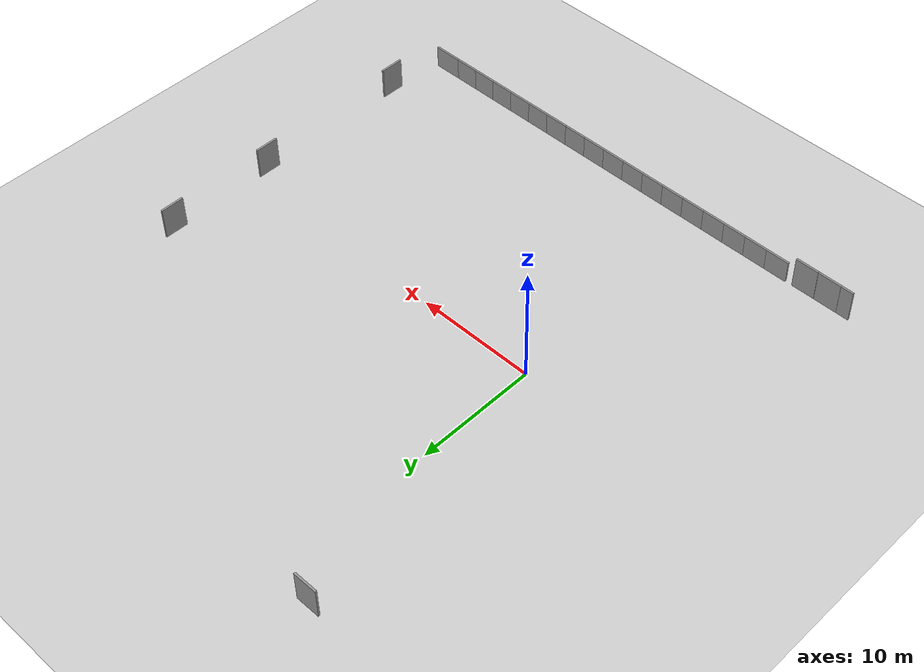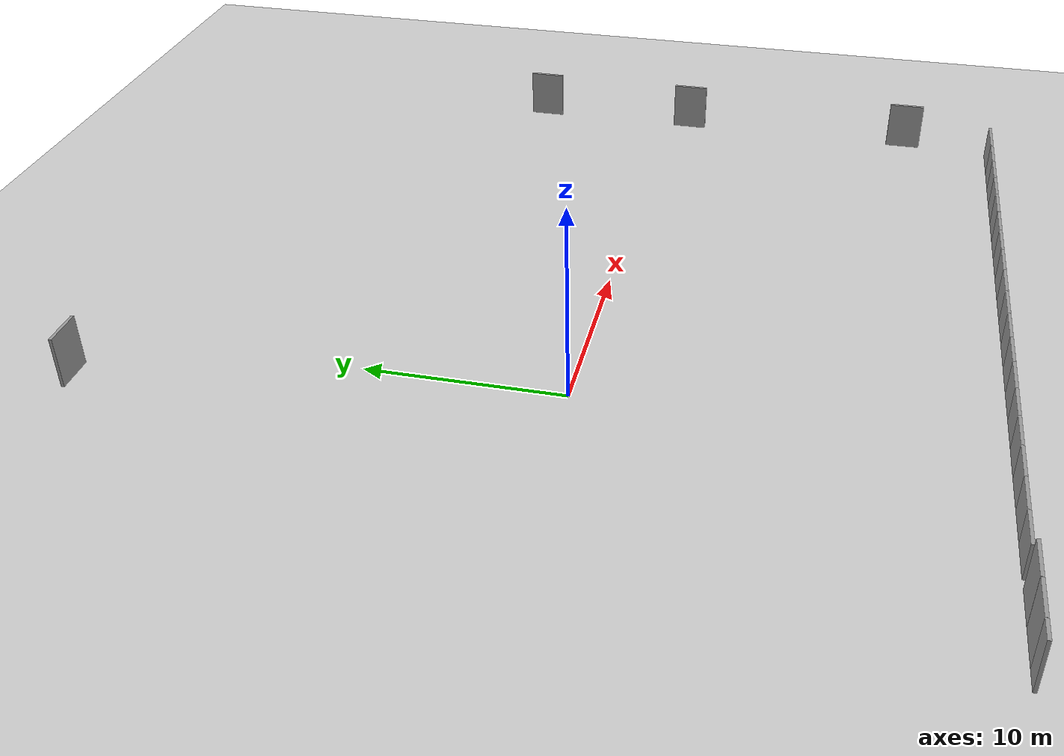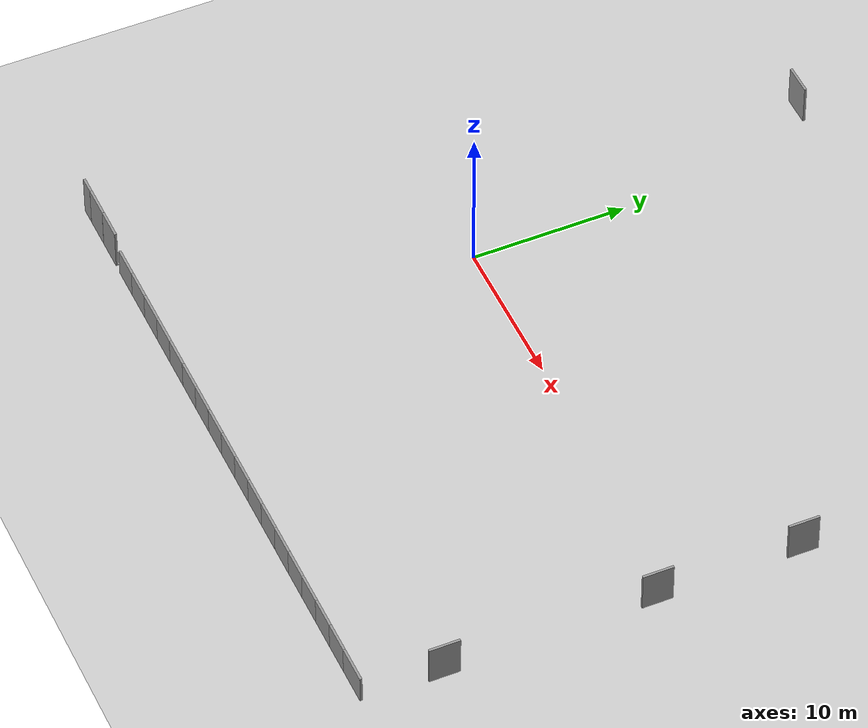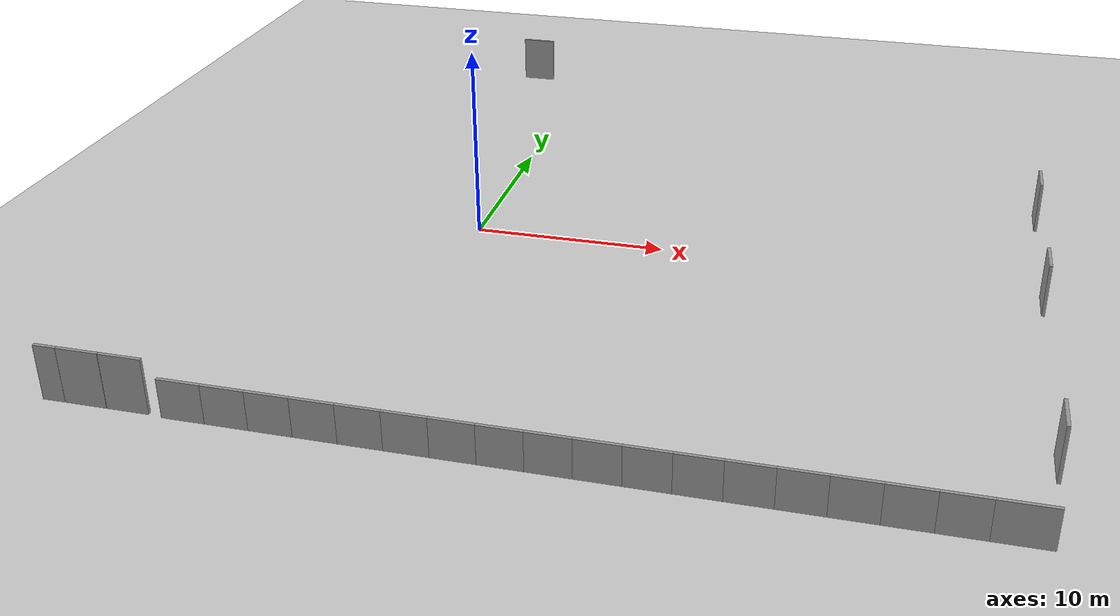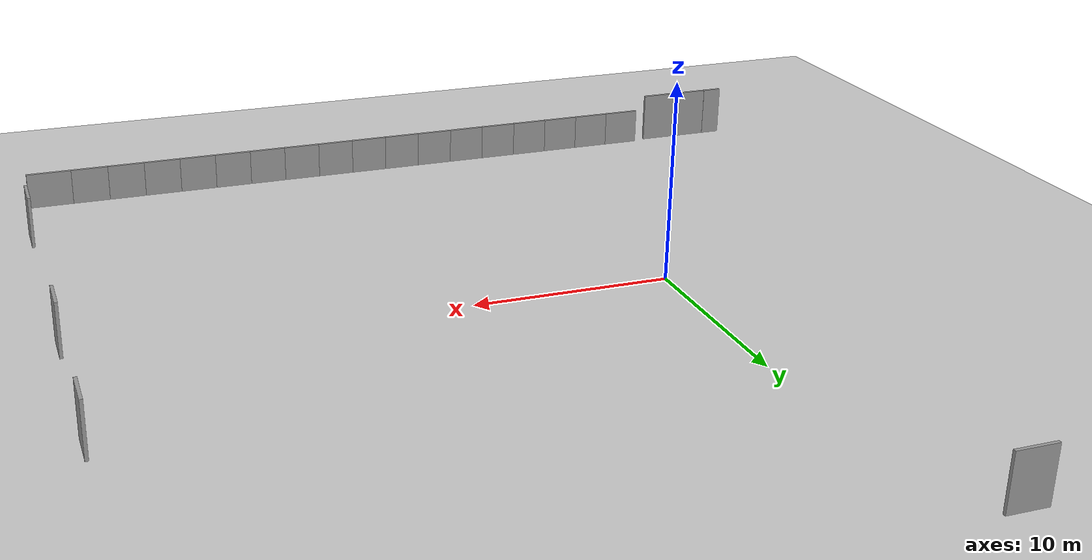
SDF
<sdf version="1.4">
 <world name="GrannyAnnie">
  <light name="sun" type="directional">
   <pose>0 0 10 0 -0 0</pose>
   <diffuse>0.8 0.8 0.8 1</diffuse>
   <specular>0.2 0.2 0.2 1</specular>
   <attenuation>
    <range>1000</range>
    <constant>0.9</constant>
    <linear>0.01</linear>
    <quadratic>0.001</quadratic>
   </attenuation>
   <direction>-0.5 0.1 -0.9</direction>
  </light>
  <model name="ground_plane">
   <static>1</static>
   <link name="link">
    <collision name="collision">
     <geometry><plane><normal>0 0 1</normal><size>100 100</size></plane></geometry>
     <surface><friction><ode><mu>100</mu><mu2>50</mu2></ode></friction></surface>
    </collision>
    <visual name="visual">
     <cast_shadows>0</cast_shadows>
     <geometry><plane><normal>0 0 1</normal><size>100 100</size></plane></geometry>
     <material>
      <script><uri>file://media/materials/scripts/gazebo.material</uri><name>Gazebo/Grey</name></script>
     </material>
    </visual>
    <velocity_decay><linear>0</linear><angular>0</angular></velocity_decay>
   </link>
  </model>
  <physics type="ode">
   <max_step_size>0.01</max_step_size>
   <real_time_factor>1</real_time_factor>
   <real_time_update_rate>100</real_time_update_rate>
   <gravity>0 0 -9.8</gravity>
  </physics>
  <scene><ambient>0.4 0.4 0.4 1</ambient><background>0.7 0.7 0.7 1</background><shadows>1</shadows></scene>
  <model name="unit_box_00">
   <pose>-12.7 -19.95 1.36159 0 -0 0</pose>
   <link name="link">
    <inertial>
     <mass>1</mass>
     <inertia>
      <ixx>0.166667</ixx>
      <ixy>0</ixy>
      <ixz>0</ixz>
      <iyy>0.166667</iyy>
      <iyz>0</iyz>
      <izz>0.166667</izz>
     </inertia>
    </inertial>
    <collision name="collision"><geometry><box><size>1.07 0.158807 2.72316</size></box></geometry></collision>
    <visual name="visual">
     <geometry><box><size>1.07 0.158807 2.72316</size></box></geometry>
     <material>
      <script><name>Gazebo/Grey</name><uri>file://media/materials/scripts/gazebo.material</uri></script>
     </material>
    </visual>
   </link>
  </model>
  <model name="unit_box_0">
   <pose>-11.17 -19.95 1.36159 0 -0 0</pose>
   <link name="link">
    <inertial>
     <mass>1</mass>
     <inertia>
      <ixx>0.166667</ixx>
      <ixy>0</ixy>
      <ixz>0</ixz>
      <iyy>0.166667</iyy>
      <iyz>0</iyz>
      <izz>0.166667</izz>
     </inertia>
    </inertial>
    <collision name="collision"><geometry><box><size>1.98304 0.158807 2.72316</size></box></geometry></collision>
    <visual name="visual">
     <geometry><box><size>1.98304 0.158807 2.72316</size></box></geometry>
     <material>
      <script><name>Gazebo/Grey</name><uri>file://media/materials/scripts/gazebo.material</uri></script>
     </material>
    </visual>
   </link>
  </model>
  <model name="unit_box_1">
   <pose>-9.17 -19.95 1.36159 0 -0 0</pose>
   <link name="link">
    <inertial>
     <mass>1</mass>
     <inertia>
      <ixx>0.166667</ixx>
      <ixy>0</ixy>
      <ixz>0</ixz>
      <iyy>0.166667</iyy>
      <iyz>0</iyz>
      <izz>0.166667</izz>
     </inertia>
    </inertial>
    <collision name="collision"><geometry><box><size>1.98304 0.158807 2.72316</size></box></geometry></collision>
    <visual name="visual">
     <geometry><box><size>1.98304 0.158807 2.72316</size></box></geometry>
     <material>
      <script><name>Gazebo/Grey</name><uri>file://media/materials/scripts/gazebo.material</uri></script>
     </material>
    </visual>
   </link>
  </model>
  <model name="unit_box_2">
   <pose>-3.24789 23.3312 1.36159 -4.1e-05 9.6e-05 0.004959</pose>
   <link name="link">
    <inertial>
     <mass>1</mass>
     <inertia>
      <ixx>0.166667</ixx>
      <ixy>0</ixy>
      <ixz>0</ixz>
      <iyy>0.166667</iyy>
      <iyz>0</iyz>
      <izz>0.166667</izz>
     </inertia>
    </inertial>
    <collision name="collision"><geometry><box><size>1.98304 0.158807 2.72316</size></box></geometry></collision>
    <visual name="visual">
     <geometry><box><size>1.98304 0.158807 2.72316</size></box></geometry>
     <material>
      <script><name>Gazebo/Grey</name><uri>file://media/materials/scripts/gazebo.material</uri></script>
     </material>
    </visual>
   </link>
  </model>
  <model name="unit_box_3">
   <pose>29.08 7.85 1.36159 6.5e-05 9.9e-05 1.57</pose>
   <link name="link">
    <inertial>
     <mass>1</mass>
     <inertia>
      <ixx>0.166667</ixx>
      <ixy>0</ixy>
      <ixz>0</ixz>
      <iyy>0.166667</iyy>
      <iyz>0</iyz>
      <izz>0.166667</izz>
     </inertia>
    </inertial>
    <collision name="collision"><geometry><box><size>1.98304 0.158807 2.72316</size></box></geometry></collision>
    <visual name="visual">
     <geometry><box><size>1.98304 0.158807 2.72316</size></box></geometry>
     <material>
      <script><name>Gazebo/Grey</name><uri>file://media/materials/scripts/gazebo.material</uri></script>
     </material>
    </visual>
   </link>
  </model>
  <model name="unit_box_4">
   <pose>29.08 -1.47638 1.36159 6.5e-05 9.9e-05 1.57</pose>
   <link name="link">
    <inertial>
     <mass>1</mass>
     <inertia>
      <ixx>0.166667</ixx>
      <ixy>0</ixy>
      <ixz>0</ixz>
      <iyy>0.166667</iyy>
      <iyz>0</iyz>
      <izz>0.166667</izz>
     </inertia>
    </inertial>
    <collision name="collision"><geometry><box><size>1.98304 0.158807 2.72316</size></box></geometry></collision>
    <visual name="visual">
     <geometry><box><size>1.98304 0.158807 2.72316</size></box></geometry>
     <material>
      <script><name>Gazebo/Grey</name><uri>file://media/materials/scripts/gazebo.material</uri></script>
     </material>
    </visual>
   </link>
  </model>
  <model name="unit_box_5">
   <pose>29.08 -14.8896 1.36159 6.5e-05 9.9e-05 1.57</pose>
   <link name="link">
    <inertial>
     <mass>1</mass>
     <inertia>
      <ixx>0.166667</ixx>
      <ixy>0</ixy>
      <ixz>0</ixz>
      <iyy>0.166667</iyy>
      <iyz>0</iyz>
      <izz>0.166667</izz>
     </inertia>
    </inertial>
    <collision name="collision"><geometry><box><size>1.98304 0.158807 2.72316</size></box></geometry></collision>
    <visual name="visual">
     <geometry><box><size>1.98304 0.158807 2.72316</size></box></geometry>
     <material>
      <script><name>Gazebo/Grey</name><uri>file://media/materials/scripts/gazebo.material</uri></script>
     </material>
    </visual>
   </link>
  </model>
  <model name="unit_box_6">
   <pose>-6.6 -19.95 0.5 0 -0 0</pose>
   <link name="link">
    <inertial>
     <mass>1</mass>
     <inertia>
      <ixx>0.166667</ixx>
      <ixy>0</ixy>
      <ixz>0</ixz>
      <iyy>0.166667</iyy>
      <iyz>0</iyz>
      <izz>0.166667</izz>
     </inertia>
    </inertial>
    <collision name="collision"><geometry><box><size>2 0.158807 2.72316</size></box></geometry></collision>
    <visual name="visual">
     <geometry><box><size>2 0.158807 2.72316</size></box></geometry>
     <material>
      <script><name>Gazebo/Grey</name><uri>file://media/materials/scripts/gazebo.material</uri></script>
     </material>
    </visual>
   </link>
  </model>
  <model name="unit_box_7">
   <pose>-4.6 -19.95 0.5 0 -0 0</pose>
   <link name="link">
    <inertial>
     <mass>1</mass>
     <inertia>
      <ixx>0.166667</ixx>
      <ixy>0</ixy>
      <ixz>0</ixz>
      <iyy>0.166667</iyy>
      <iyz>0</iyz>
      <izz>0.166667</izz>
     </inertia>
    </inertial>
    <collision name="collision"><geometry><box><size>2 0.158807 2.72316</size></box></geometry></collision>
    <visual name="visual">
     <geometry><box><size>2 0.158807 2.72316</size></box></geometry>
     <material>
      <script><name>Gazebo/Grey</name><uri>file://media/materials/scripts/gazebo.material</uri></script>
     </material>
    </visual>
   </link>
  </model>
  <model name="unit_box_8">
   <pose>-2.6 -19.95 0.5 0 -0 0</pose>
   <link name="link">
    <inertial>
     <mass>1</mass>
     <inertia>
      <ixx>0.166667</ixx>
      <ixy>0</ixy>
      <ixz>0</ixz>
      <iyy>0.166667</iyy>
      <iyz>0</iyz>
      <izz>0.166667</izz>
     </inertia>
    </inertial>
    <collision name="collision"><geometry><box><size>2 0.158807 2.72316</size></box></geometry></collision>
    <visual name="visual">
     <geometry><box><size>2 0.158807 2.72316</size></box></geometry>
     <material>
      <script><name>Gazebo/Grey</name><uri>file://media/materials/scripts/gazebo.material</uri></script>
     </material>
    </visual>
   </link>
  </model>
  <model name="unit_box_9">
   <pose>-0.6 -19.95 0.5 0 -0 0</pose>
   <link name="link">
    <inertial>
     <mass>1</mass>
     <inertia>
      <ixx>0.166667</ixx>
      <ixy>0</ixy>
      <ixz>0</ixz>
      <iyy>0.166667</iyy>
      <iyz>0</iyz>
      <izz>0.166667</izz>
     </inertia>
    </inertial>
    <collision name="collision"><geometry><box><size>2 0.158807 2.72316</size></box></geometry></collision>
    <visual name="visual">
     <geometry><box><size>2 0.158807 2.72316</size></box></geometry>
     <material>
      <script><name>Gazebo/Grey</name><uri>file://media/materials/scripts/gazebo.material</uri></script>
     </material>
    </visual>
   </link>
  </model>
  <model name="unit_box_10">
   <pose>1.4 -19.95 0.5 0 -0 0</pose>
   <link name="link">
    <inertial>
     <mass>1</mass>
     <inertia>
      <ixx>0.166667</ixx>
      <ixy>0</ixy>
      <ixz>0</ixz>
      <iyy>0.166667</iyy>
      <iyz>0</iyz>
      <izz>0.166667</izz>
     </inertia>
    </inertial>
    <collision name="collision"><geometry><box><size>2 0.158807 2.72316</size></box></geometry></collision>
    <visual name="visual">
     <geometry><box><size>2 0.158807 2.72316</size></box></geometry>
     <material>
      <script><name>Gazebo/Grey</name><uri>file://media/materials/scripts/gazebo.material</uri></script>
     </material>
    </visual>
   </link>
  </model>
  <model name="unit_box_11">
   <pose>3.4 -19.95 0.5 0 -0 0</pose>
   <link name="link">
    <inertial>
     <mass>1</mass>
     <inertia>
      <ixx>0.166667</ixx>
      <ixy>0</ixy>
      <ixz>0</ixz>
      <iyy>0.166667</iyy>
      <iyz>0</iyz>
      <izz>0.166667</izz>
     </inertia>
    </inertial>
    <collision name="collision"><geometry><box><size>2 0.158807 2.72316</size></box></geometry></collision>
    <visual name="visual">
     <geometry><box><size>2 0.158807 2.72316</size></box></geometry>
     <material>
      <script><name>Gazebo/Grey</name><uri>file://media/materials/scripts/gazebo.material</uri></script>
     </material>
    </visual>
   </link>
  </model>
  <model name="unit_box_12">
   <pose>5.4 -19.95 0.5 0 -0 0</pose>
   <link name="link">
    <inertial>
     <mass>1</mass>
     <inertia>
      <ixx>0.166667</ixx>
      <ixy>0</ixy>
      <ixz>0</ixz>
      <iyy>0.166667</iyy>
      <iyz>0</iyz>
      <izz>0.166667</izz>
     </inertia>
    </inertial>
    <collision name="collision"><geometry><box><size>2 0.158807 2.72316</size></box></geometry></collision>
    <visual name="visual">
     <geometry><box><size>2 0.158807 2.72316</size></box></geometry>
     <material>
      <script><name>Gazebo/Grey</name><uri>file://media/materials/scripts/gazebo.material</uri></script>
     </material>
    </visual>
   </link>
  </model>
  <model name="unit_box_13">
   <pose>7.4 -19.95 0.5 0 -0 0</pose>
   <link name="link">
    <inertial>
     <mass>1</mass>
     <inertia>
      <ixx>0.166667</ixx>
      <ixy>0</ixy>
      <ixz>0</ixz>
      <iyy>0.166667</iyy>
      <iyz>0</iyz>
      <izz>0.166667</izz>
     </inertia>
    </inertial>
    <collision name="collision"><geometry><box><size>2 0.158807 2.72316</size></box></geometry></collision>
    <visual name="visual">
     <geometry><box><size>2 0.158807 2.72316</size></box></geometry>
     <material>
      <script><name>Gazebo/Grey</name><uri>file://media/materials/scripts/gazebo.material</uri></script>
     </material>
    </visual>
   </link>
  </model>
  <model name="unit_box_14">
   <pose>9.4 -19.95 0.5 0 -0 0</pose>
   <link name="link">
    <inertial>
     <mass>1</mass>
     <inertia>
      <ixx>0.166667</ixx>
      <ixy>0</ixy>
      <ixz>0</ixz>
      <iyy>0.166667</iyy>
      <iyz>0</iyz>
      <izz>0.166667</izz>
     </inertia>
    </inertial>
    <collision name="collision"><geometry><box><size>2 0.158807 2.72316</size></box></geometry></collision>
    <visual name="visual">
     <geometry><box><size>2 0.158807 2.72316</size></box></geometry>
     <material>
      <script><name>Gazebo/Grey</name><uri>file://media/materials/scripts/gazebo.material</uri></script>
     </material>
    </visual>
   </link>
  </model>
  <model name="unit_box_15">
   <pose>11.4 -19.95 0.5 0 -0 0</pose>
   <link name="link">
    <inertial>
     <mass>1</mass>
     <inertia>
      <ixx>0.166667</ixx>
      <ixy>0</ixy>
      <ixz>0</ixz>
      <iyy>0.166667</iyy>
      <iyz>0</iyz>
      <izz>0.166667</izz>
     </inertia>
    </inertial>
    <collision name="collision"><geometry><box><size>2 0.158807 2.72316</size></box></geometry></collision>
    <visual name="visual">
     <geometry><box><size>2 0.158807 2.72316</size></box></geometry>
     <material>
      <script><name>Gazebo/Grey</name><uri>file://media/materials/scripts/gazebo.material</uri></script>
     </material>
    </visual>
   </link>
  </model>
  <model name="unit_box_16">
   <pose>13.4 -19.95 0.5 0 -0 0</pose>
   <link name="link">
    <inertial>
     <mass>1</mass>
     <inertia>
      <ixx>0.166667</ixx>
      <ixy>0</ixy>
      <ixz>0</ixz>
      <iyy>0.166667</iyy>
      <iyz>0</iyz>
      <izz>0.166667</izz>
     </inertia>
    </inertial>
    <collision name="collision"><geometry><box><size>2 0.158807 2.72316</size></box></geometry></collision>
    <visual name="visual">
     <geometry><box><size>2 0.158807 2.72316</size></box></geometry>
     <material>
      <script><name>Gazebo/Grey</name><uri>file://media/materials/scripts/gazebo.material</uri></script>
     </material>
    </visual>
   </link>
  </model>
  <model name="unit_box_17">
   <pose>15.4 -19.95 0.5 0 -0 0</pose>
   <link name="link">
    <inertial>
     <mass>1</mass>
     <inertia>
      <ixx>0.166667</ixx>
      <ixy>0</ixy>
      <ixz>0</ixz>
      <iyy>0.166667</iyy>
      <iyz>0</iyz>
      <izz>0.166667</izz>
     </inertia>
    </inertial>
    <collision name="collision"><geometry><box><size>2 0.158807 2.72316</size></box></geometry></collision>
    <visual name="visual">
     <geometry><box><size>2 0.158807 2.72316</size></box></geometry>
     <material>
      <script><name>Gazebo/Grey</name><uri>file://media/materials/scripts/gazebo.material</uri></script>
     </material>
    </visual>
   </link>
  </model>
  <model name="unit_box_18">
   <pose>17.4 -19.95 0.5 0 -0 0</pose>
   <link name="link">
    <inertial>
     <mass>1</mass>
     <inertia>
      <ixx>0.166667</ixx>
      <ixy>0</ixy>
      <ixz>0</ixz>
      <iyy>0.166667</iyy>
      <iyz>0</iyz>
      <izz>0.166667</izz>
     </inertia>
    </inertial>
    <collision name="collision"><geometry><box><size>2 0.158807 2.72316</size></box></geometry></collision>
    <visual name="visual">
     <geometry><box><size>2 0.158807 2.72316</size></box></geometry>
     <material>
      <script><name>Gazebo/Grey</name><uri>file://media/materials/scripts/gazebo.material</uri></script>
     </material>
    </visual>
   </link>
  </model>
  <model name="unit_box_19">
   <pose>19.4 -19.95 0.5 0 -0 0</pose>
   <link name="link">
    <inertial>
     <mass>1</mass>
     <inertia>
      <ixx>0.166667</ixx>
      <ixy>0</ixy>
      <ixz>0</ixz>
      <iyy>0.166667</iyy>
      <iyz>0</iyz>
      <izz>0.166667</izz>
     </inertia>
    </inertial>
    <collision name="collision"><geometry><box><size>2 0.158807 2.72316</size></box></geometry></collision>
    <visual name="visual">
     <geometry><box><size>2 0.158807 2.72316</size></box></geometry>
     <material>
      <script><name>Gazebo/Grey</name><uri>file://media/materials/scripts/gazebo.material</uri></script>
     </material>
    </visual>
   </link>
  </model>
  <model name="unit_box_20">
   <pose>21.4 -19.95 0.5 0 -0 0</pose>
   <link name="link">
    <inertial>
     <mass>1</mass>
     <inertia>
      <ixx>0.166667</ixx>
      <ixy>0</ixy>
      <ixz>0</ixz>
      <iyy>0.166667</iyy>
      <iyz>0</iyz>
      <izz>0.166667</izz>
     </inertia>
    </inertial>
    <collision name="collision"><geometry><box><size>2 0.158807 2.72316</size></box></geometry></collision>
    <visual name="visual">
     <geometry><box><size>2 0.158807 2.72316</size></box></geometry>
     <material>
      <script><name>Gazebo/Grey</name><uri>file://media/materials/scripts/gazebo.material</uri></script>
     </material>
    </visual>
   </link>
  </model>
  <model name="unit_box_21">
   <pose>23.4 -19.95 0.5 0 -0 0</pose>
   <link name="link">
    <inertial>
     <mass>1</mass>
     <inertia>
      <ixx>0.166667</ixx>
      <ixy>0</ixy>
      <ixz>0</ixz>
      <iyy>0.166667</iyy>
      <iyz>0</iyz>
      <izz>0.166667</izz>
     </inertia>
    </inertial>
    <collision name="collision"><geometry><box><size>2 0.158807 2.72316</size></box></geometry></collision>
    <visual name="visual">
     <geometry><box><size>2 0.158807 2.72316</size></box></geometry>
     <material>
      <script><name>Gazebo/Grey</name><uri>file://media/materials/scripts/gazebo.material</uri></script>
     </material>
    </visual>
   </link>
  </model>
  <model name="unit_box_22">
   <pose>25.4 -19.95 0.5 0 -0 0</pose>
   <link name="link">
    <inertial>
     <mass>1</mass>
     <inertia>
      <ixx>0.166667</ixx>
      <ixy>0</ixy>
      <ixz>0</ixz>
      <iyy>0.166667</iyy>
      <iyz>0</iyz>
      <izz>0.166667</izz>
     </inertia>
    </inertial>
    <collision name="collision"><geometry><box><size>2 0.158807 2.72316</size></box></geometry></collision>
    <visual name="visual">
     <geometry><box><size>2 0.158807 2.72316</size></box></geometry>
     <material>
      <script><name>Gazebo/Grey</name><uri>file://media/materials/scripts/gazebo.material</uri></script>
     </material>
    </visual>
   </link>
  </model>
  <model name="unit_box_23">
   <pose>27.6 -19.95 0.5 0 -0 0</pose>
   <link name="link">
    <inertial>
     <mass>1</mass>
     <inertia>
      <ixx>0.166667</ixx>
      <ixy>0</ixy>
      <ixz>0</ixz>
      <iyy>0.166667</iyy>
      <iyz>0</iyz>
      <izz>0.166667</izz>
     </inertia>
    </inertial>
    <collision name="collision"><geometry><box><size>2.4 0.158807 2.72316</size></box></geometry></collision>
    <visual name="visual">
     <geometry><box><size>2.4 0.158807 2.72316</size></box></geometry>
     <material>
      <script><name>Gazebo/Grey</name><uri>file://media/materials/scripts/gazebo.material</uri></script>
     </material>
    </visual>
   </link>
  </model>
  <plugin name="gazebo_occupancy_map" filename="libgazebo_2Dmap_plugin.so">
   <map_resolution>0.1</map_resolution>
   <map_height>0.3</map_height>
   <map_size_x>150</map_size_x>
   <map_size_y>150</map_size_y>
   <init_robot_x>0</init_robot_x>
   <init_robot_y>0</init_robot_y>
  </plugin>
 </world>
</sdf>
